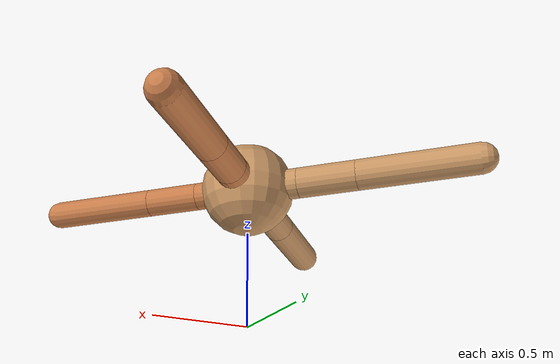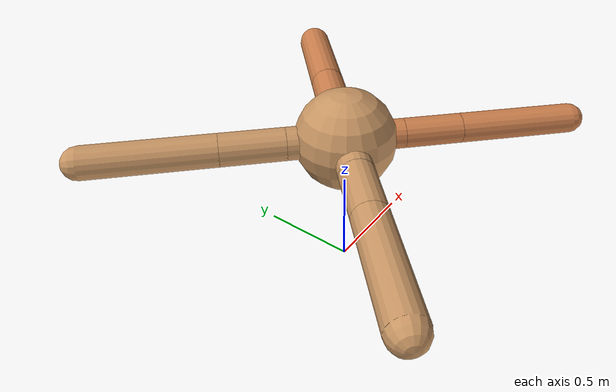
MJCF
<?xml version="1.0" ?>
<mujoco model="ant">

	<compiler angle="degree" coordinate="local" inertiafromgeom="true"/>

	<option integrator="RK4" timestep="0.01"/>

	<custom>

		<numeric data="0.0 0.0 0.55 1.0 0.0 0.0 0.0 0.0 1.0 0.0 -1.0 0.0 -1.0 0.0 1.0" name="init_qpos"/>

	</custom>

	<default>

		<joint armature="1" damping="1" limited="true"/>

		<geom conaffinity="0" condim="3" density="5.0" friction="1.5 0.1 0.1" margin="0.01" rgba="0.8 0.6 0.4 1"/>

	</default>

	<worldbody>

		<body name="torso" pos="0 0 0.75">

			<geom name="torso_geom" pos="0 0 0" size="0.24597950328267684" type="sphere"/>

			<!--joint armature="0" damping="0" limited="false" margin="0.01" name="root" pos="0 0 0" type="free"/-->

			<body name="front_left_leg" pos="0 0 0">

				<geom fromto="0 0 0 0.2 0.2 0" name="aux_1_geom" size="0.08770310480508886" type="capsule" rgba=".8 .5 .3 1"/>

				<body name="aux_1" pos="0.2 0.2 0">

					<joint axis="0 0 1" name="hip_1" pos="0.0 0.0 0.0" range="-40 40" type="hinge"/>

					<geom fromto="0 0 0 0.18903907221092128 0.18903907221092128 0" name="left_leg_geom" size="0.08770310480508886" type="capsule" rgba=".8 .5 .3 1"/>

					<body pos="0.18903907221092128 0.18903907221092128 0" name="front_left_foot">

						<joint axis="-1 1 0" name="ankle_1" pos="0.0 0.0 0.0" range="30 100" type="hinge"/>

						<geom fromto="0 0 0 0.37807814442184257 0.37807814442184257 0" name="left_ankle_geom" size="0.08770310480508886" type="capsule" rgba=".8 .5 .3 1"/>

					</body>

				</body>

			</body>

			<body name="front_right_leg" pos="0 0 0">

				<geom fromto="0 0 0 -0.2 0.2 0" name="aux_2_geom" size="0.0805581783704798" type="capsule"/>

				<body name="aux_2" pos="-0.2 0.2 0">

					<joint axis="0 0 1" name="hip_2" pos="0.0 0.0 0.0" range="-40 40" type="hinge"/>

					<geom fromto="0 0 0 -0.21971039935806416 0.21971039935806416 0" name="right_leg_geom" size="0.0805581783704798" type="capsule"/>

					<body pos="-0.21971039935806416 0.21971039935806416 0" name="front_right_foot">

						<joint axis="1 1 0" name="ankle_2" pos="0.0 0.0 0.0" range="-100 -30" type="hinge"/>

						<geom fromto="0 0 0 -0.4394207987161283 0.4394207987161283 0" name="right_ankle_geom" size="0.0805581783704798" type="capsule"/>

					</body>

				</body>

			</body>

			<body name="left_back_leg" pos="0 0 0">

				<geom fromto="0 0 0 -0.2 -0.2 0" name="aux_3_geom" size="0.08550837128947718" type="capsule"/>

				<body name="aux_3" pos="-0.2 -0.2 0">

					<joint axis="0 0 1" name="hip_3" pos="0.0 0.0 0.0" range="-40 40" type="hinge"/>

					<geom fromto="0 0 0 -0.1982327591173624 -0.1982327591173624 0" name="back_leg_geom" size="0.08550837128947718" type="capsule"/>

					<body pos="-0.1982327591173624 -0.1982327591173624 0" name="left_back_foot">

						<joint axis="-1 1 0" name="ankle_3" pos="0.0 0.0 0.0" range="-100 -30" type="hinge"/>

						<geom fromto="0 0 0 -0.3964655182347248 -0.3964655182347248 0" name="third_ankle_geom" size="0.08550837128947718" type="capsule"/>

					</body>

				</body>

			</body>

			<body name="right_back_leg" pos="0 0 0">

				<geom fromto="0 0 0 0.2 -0.2 0" name="aux_4_geom" size="0.07293929916901375" type="capsule" rgba=".8 .5 .3 1"/>

				<body name="aux_4" pos="0.2 -0.2 0">

					<joint axis="0 0 1" name="hip_4" pos="0.0 0.0 0.0" range="-40 40" type="hinge"/>

					<geom fromto="0 0 0 0.19879212979831598 -0.19879212979831598 0" name="rightback_leg_geom" size="0.07293929916901375" type="capsule" rgba=".8 .5 .3 1"/>

					<body pos="0.19879212979831598 -0.19879212979831598 0" name="right_back_foot">

						<joint axis="1 1 0" name="ankle_4" pos="0.0 0.0 0.0" range="30 100" type="hinge"/>

						<geom fromto="0 0 0 0.39758425959663196 -0.39758425959663196 0" name="fourth_ankle_geom" size="0.07293929916901375" type="capsule" rgba=".8 .5 .3 1"/>

					</body>

				</body>

			</body>

		</body>

	</worldbody>

	<actuator>

		<motor ctrllimited="true" ctrlrange="-1.0 1.0" joint="hip_4" gear="150"/>

		<motor ctrllimited="true" ctrlrange="-1.0 1.0" joint="ankle_4" gear="150"/>

		<motor ctrllimited="true" ctrlrange="-1.0 1.0" joint="hip_1" gear="150"/>

		<motor ctrllimited="true" ctrlrange="-1.0 1.0" joint="ankle_1" gear="150"/>

		<motor ctrllimited="true" ctrlrange="-1.0 1.0" joint="hip_2" gear="150"/>

		<motor ctrllimited="true" ctrlrange="-1.0 1.0" joint="ankle_2" gear="150"/>

		<motor ctrllimited="true" ctrlrange="-1.0 1.0" joint="hip_3" gear="150"/>

		<motor ctrllimited="true" ctrlrange="-1.0 1.0" joint="ankle_3" gear="150"/>

	</actuator>

</mujoco>
